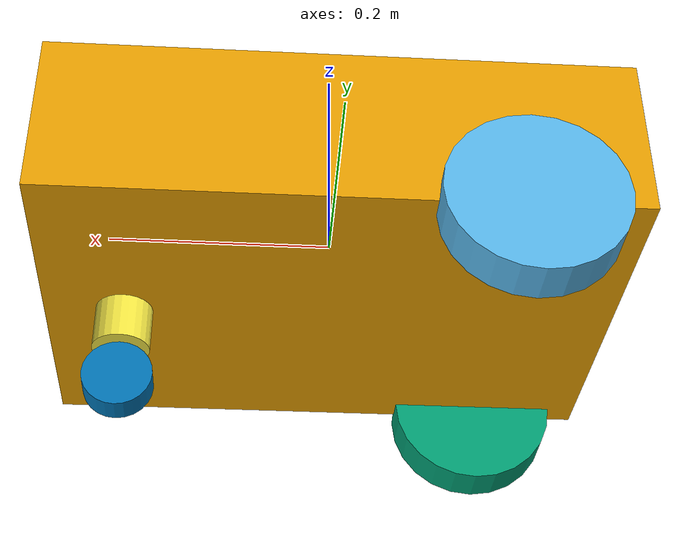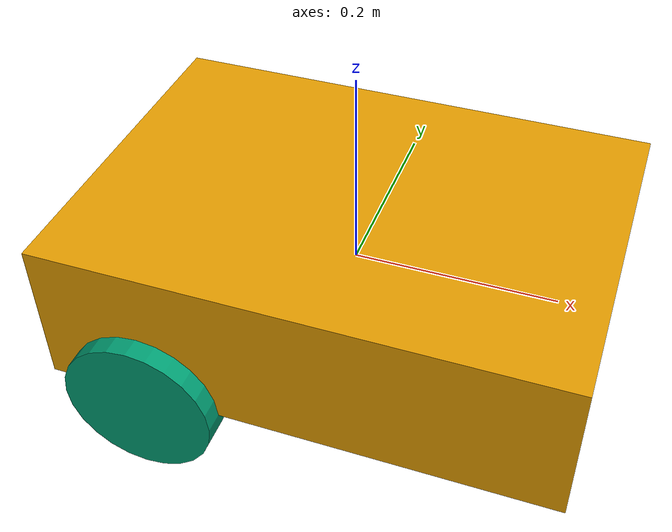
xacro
<?xml version="1.0"?>

<robot xmlns:xacro="http://www.ros.org/wiki/xacro"
       name="mcrae">

  <!-- Robot dimensions                                  -->

  <xacro:property name="chassis_length" value="0.50"/>
  <xacro:property name="chassis_width"  value="0.35"/>
  <xacro:property name="chassis_height" value="0.15"/>

  <xacro:property name="chassis_mass" value="5.0"/>

  <xacro:property name="wheel_radius" value="0.075"/>
  <xacro:property name="wheel_width"  value="0.04"/>
  <xacro:property name="wheel_mass"   value="0.5"/>

  <xacro:property name="caster_radius" value="0.030"/>
  <xacro:property name="caster_width"  value="0.025"/>
  <xacro:property name="caster_mass"   value="0.25"/>

  <!-- Base link                                         -->

  <link name="base_link">

    <visual>
      <origin xyz="0 0 0" rpy="0 0 0"/>

      <geometry>
        <box size="${chassis_length}
                   ${chassis_width}
                   ${chassis_height}"/>
      </geometry>
    </visual>

    <collision>
      <origin xyz="0 0 0" rpy="0 0 0"/>

      <geometry>
        <box size="${chassis_length}
                   ${chassis_width}
                   ${chassis_height}"/>
      </geometry>
    </collision>

    <inertial>
      <origin xyz="0 0 0" rpy="0 0 0"/>

      <mass value="${chassis_mass}"/>

      <inertia
        ixx="0.1"
        ixy="0.0"
        ixz="0.0"
        iyy="0.1"
        iyz="0.0"
        izz="0.1"/>
    </inertial>

  </link>

  <!-- Left wheel                                       -->

  <link name="left_wheel_link">

    <visual>

      <origin xyz="0 0 0" rpy="1.5708 0 0"/>

      <geometry>
        <cylinder
          radius="${wheel_radius}"
          length="${wheel_width}"/>
      </geometry>

    </visual>

    <collision>

      <origin xyz="0 0 0" rpy="1.5708 0 0"/>

      <geometry>
        <cylinder
          radius="${wheel_radius}"
          length="${wheel_width}"/>
      </geometry>

    </collision>

    <inertial>

      <origin xyz="0 0 0" rpy="0 0 0"/>

      <mass value="${wheel_mass}"/>

      <inertia
        ixx="0.001"
        ixy="0.0"
        ixz="0.0"
        iyy="0.001"
        iyz="0.0"
        izz="0.001"/>

    </inertial>

  </link>

  <!-- Right wheel                                      -->

  <link name="right_wheel_link">

    <visual>

      <origin xyz="0 0 0" rpy="1.5708 0 0"/>

      <geometry>
        <cylinder
          radius="${wheel_radius}"
          length="${wheel_width}"/>
      </geometry>

    </visual>

    <collision>

      <origin xyz="0 0 0" rpy="1.5708 0 0"/>

      <geometry>
        <cylinder
          radius="${wheel_radius}"
          length="${wheel_width}"/>
      </geometry>

    </collision>

    <inertial>

      <origin xyz="0 0 0" rpy="0 0 0"/>

      <mass value="${wheel_mass}"/>

      <inertia
        ixx="0.001"
        ixy="0.0"
        ixz="0.0"
        iyy="0.001"
        iyz="0.0"
        izz="0.001"/>

    </inertial>

  </link>

  <!-- Caster mount                                      -->

  <link name="caster_mount_link">

    <visual>
      <geometry>
        <cylinder
          radius="0.025"
          length="0.04"/>
      </geometry>
    </visual>

    <collision>
      <geometry>
        <cylinder
          radius="0.025"
          length="0.04"/>
      </geometry>
    </collision>

    <inertial>
      <mass value="0.1"/>

      <inertia
        ixx="0.0001"
        ixy="0.0"
        ixz="0.0"
        iyy="0.0001"
        iyz="0.0"
        izz="0.0001"/>
    </inertial>

  </link>

  <!-- Caster wheel                                      -->

  <link name="caster_wheel_link">

    <visual>

      <origin
        xyz="0 0 0"
        rpy="1.5708 0 0"/>

      <geometry>
        <cylinder
          radius="${caster_radius}"
          length="${caster_width}"/>
      </geometry>

    </visual>

    <collision>

      <origin
        xyz="0 0 0"
        rpy="1.5708 0 0"/>

      <geometry>
        <cylinder
          radius="${caster_radius}"
          length="${caster_width}"/>
      </geometry>

    </collision>

    <inertial>

      <mass value="${caster_mass}"/>

      <inertia
        ixx="0.0002"
        ixy="0.0"
        ixz="0.0"
        iyy="0.0002"
        iyz="0.0"
        izz="0.0002"/>

    </inertial>

  </link>

  <!-- Caster swivel joint                               -->

  <joint
    name="caster_swivel_joint"
    type="continuous">

    <parent link="base_link"/>
    <child link="caster_mount_link"/>

    <origin
      xyz="0.18 0 -0.095"
      rpy="0 0 0"/>

    <axis xyz="0 0 1"/>

  </joint>

  <!-- Left wheel joint                                 -->

  <joint name="left_wheel_joint"
         type="continuous">

    <parent link="base_link"/>
    <child link="left_wheel_link"/>

    <origin
      xyz="-0.15 ${chassis_width / 2} ${-chassis_height / 2}"
      rpy="0 0 0"/>

    <axis xyz="0 1 0"/>

  </joint>

  <!-- Right wheel joint                                -->

  <joint name="right_wheel_joint"
         type="continuous">

    <parent link="base_link"/>
    <child link="right_wheel_link"/>

    <origin
      xyz="-0.15 ${-chassis_width / 2} ${-chassis_height / 2}"
      rpy="0 0 0"/>

    <axis xyz="0 1 0"/>

  </joint>

  <!-- Caster wheel joint                                -->

  <joint
    name="caster_wheel_joint"
    type="continuous">

    <parent link="caster_mount_link"/>
    <child link="caster_wheel_link"/>

    <origin
      xyz="0 0 -0.050"
      rpy="0 0 0"/>

    <axis xyz="0 1 0"/>

  </joint>

  <!-- ros2_control                                      -->

  <ros2_control name="McRaeSystem" type="system">

    <hardware>
      <plugin>gz_ros2_control/GazeboSimSystem</plugin>
    </hardware>

    <!-- Left drive wheel -->

    <joint name="left_wheel_joint">

      <command_interface name="velocity"/>

      <state_interface name="position"/>
      <state_interface name="velocity"/>

    </joint>

    <!-- Right drive wheel -->

    <joint name="right_wheel_joint">

      <command_interface name="velocity"/>

      <state_interface name="position"/>
      <state_interface name="velocity"/>

    </joint>

  </ros2_control>

  <!-- Gazebo ros2_control plugin                       -->

  <gazebo>

    <plugin
      filename="gz_ros2_control-system"
      name="gz_ros2_control::GazeboSimROS2ControlPlugin">

      <parameters>
        $(find mcrae_description)/config/diff_drive_controller.yaml
      </parameters>

    </plugin>

  </gazebo>

</robot>
